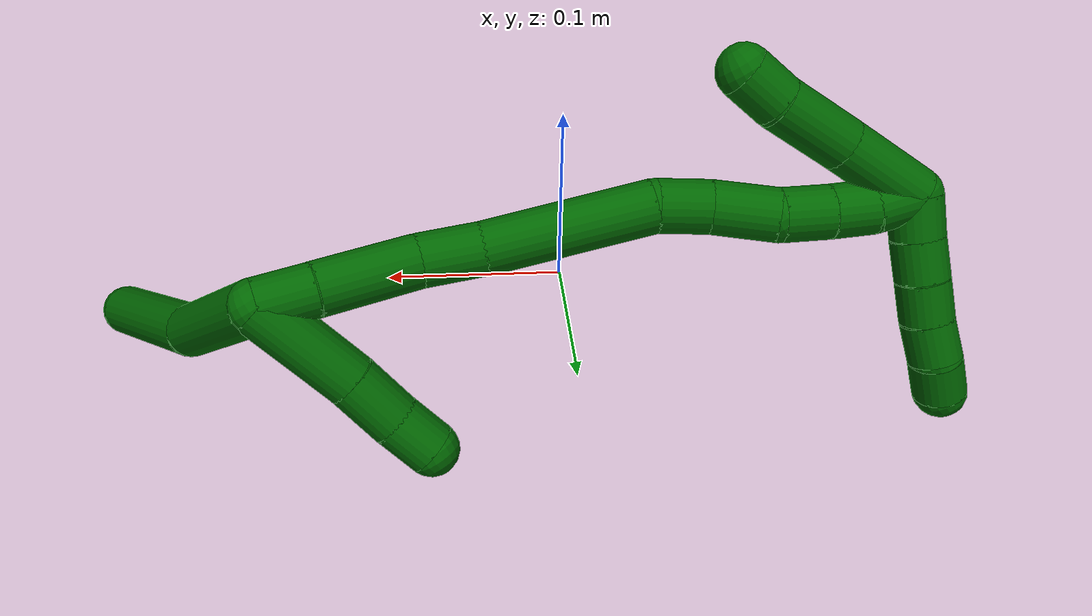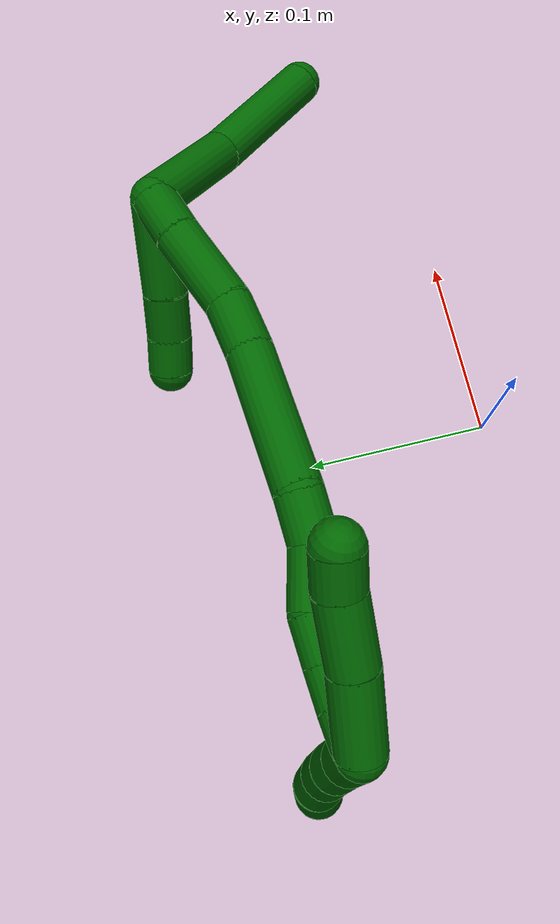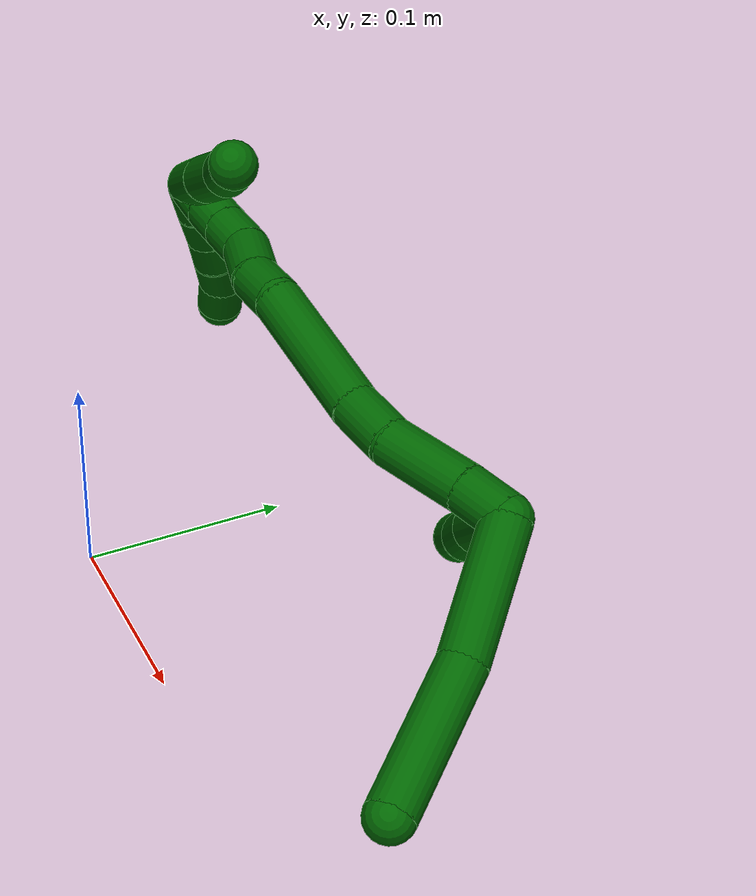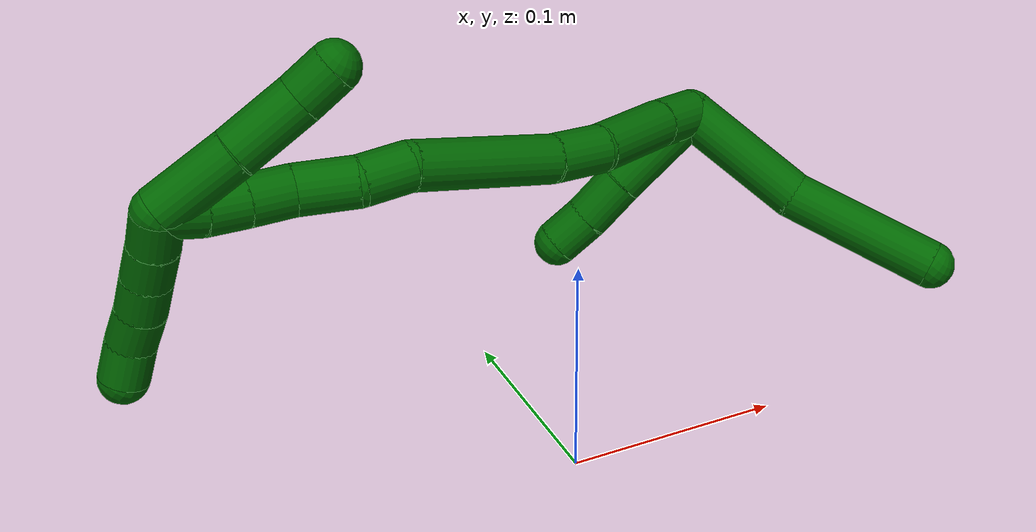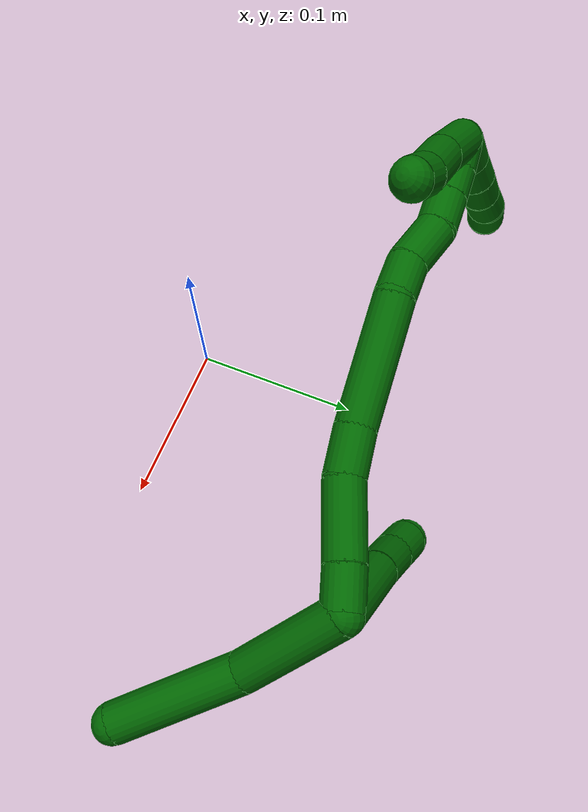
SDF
<sdf version="1.7">
 <world name="default">
  <model name="6">
   <static>0</static>
   <link name="6">
    <collision name="collision-cylinder-e_1_2_8">
     <pose>0.034779 0.00255 0.000922 -1.22394 1.493 -1.15173</pose>
     <geometry><cylinder><radius>0.0125</radius><length>0.069768</length></cylinder></geometry>
     <surface>
      <friction><ode><mu>1.16</mu><mu2>1.16</mu2><slip1>0</slip1><slip2>0</slip2></ode></friction>
      <contact><ode><kp>1e+06</kp><kd>1</kd><max_vel>0</max_vel><min_depth>0.001</min_depth></ode></contact>
     </surface>
    </collision>
    <visual name="visual-cylinder-e_1_2_8">
     <pose>0.034779 0.00255 0.000922 -1.22394 1.493 -1.15173</pose>
     <geometry><cylinder><radius>0.0125</radius><length>0.069768</length></cylinder></geometry>
     <material><ambient>0 0.392157 0.003922 1</ambient></material>
    </visual>
    <collision name="collision-cylinder-e_2_8_6">
     <pose>0.108002 0.003452 0.013184 0.144274 1.2811 0.107625</pose>
     <geometry><cylinder><radius>0.0125</radius><length>0.080232</length></cylinder></geometry>
     <surface>
      <friction><ode><mu>1.16</mu><mu2>1.16</mu2><slip1>0</slip1><slip2>0</slip2></ode></friction>
      <contact><ode><kp>1e+06</kp><kd>1</kd><max_vel>0</max_vel><min_depth>0.001</min_depth></ode></contact>
     </surface>
    </collision>
    <visual name="visual-cylinder-e_2_8_6">
     <pose>0.108002 0.003452 0.013184 0.144274 1.2811 0.107625</pose>
     <geometry><cylinder><radius>0.0125</radius><length>0.080232</length></cylinder></geometry>
     <material><ambient>0 0.392157 0.003922 1</ambient></material>
    </visual>
    <collision name="collision-cylinder-e_1_2_9">
     <pose>-0.001832 -0.007854 -0.024837 2.83534 -0.07022 -0.447549</pose>
     <geometry><cylinder><radius>0.0125</radius><length>0.052227</length></cylinder></geometry>
     <surface>
      <friction><ode><mu>1.16</mu><mu2>1.16</mu2><slip1>0</slip1><slip2>0</slip2></ode></friction>
      <contact><ode><kp>1e+06</kp><kd>1</kd><max_vel>0</max_vel><min_depth>0.001</min_depth></ode></contact>
     </surface>
    </collision>
    <visual name="visual-cylinder-e_1_2_9">
     <pose>-0.001832 -0.007854 -0.024837 2.83534 -0.07022 -0.447549</pose>
     <geometry><cylinder><radius>0.0125</radius><length>0.052227</length></cylinder></geometry>
     <material><ambient>0 0.392157 0.003922 1</ambient></material>
    </visual>
    <collision name="collision-cylinder-e_2_9_10">
     <pose>-0.004109 -0.018858 -0.0625 2.90073 -0.033623 -0.276103</pose>
     <geometry><cylinder><radius>0.0125</radius><length>0.02643</length></cylinder></geometry>
     <surface>
      <friction><ode><mu>1.16</mu><mu2>1.16</mu2><slip1>0</slip1><slip2>0</slip2></ode></friction>
      <contact><ode><kp>1e+06</kp><kd>1</kd><max_vel>0</max_vel><min_depth>0.001</min_depth></ode></contact>
     </surface>
    </collision>
    <visual name="visual-cylinder-e_2_9_10">
     <pose>-0.004109 -0.018858 -0.0625 2.90073 -0.033623 -0.276103</pose>
     <geometry><cylinder><radius>0.0125</radius><length>0.02643</length></cylinder></geometry>
     <material><ambient>0 0.392157 0.003922 1</ambient></material>
    </visual>
    <collision name="collision-cylinder-e_3_10_5">
     <pose>-0.005996 -0.02482 -0.085519 2.87241 -0.135634 -0.929848</pose>
     <geometry><cylinder><radius>0.0125</radius><length>0.021343</length></cylinder></geometry>
     <surface>
      <friction><ode><mu>1.16</mu><mu2>1.16</mu2><slip1>0</slip1><slip2>0</slip2></ode></friction>
      <contact><ode><kp>1e+06</kp><kd>1</kd><max_vel>0</max_vel><min_depth>0.001</min_depth></ode></contact>
     </surface>
    </collision>
    <visual name="visual-cylinder-e_3_10_5">
     <pose>-0.005996 -0.02482 -0.085519 2.87241 -0.135634 -0.929848</pose>
     <geometry><cylinder><radius>0.0125</radius><length>0.021343</length></cylinder></geometry>
     <material><ambient>0 0.392157 0.003922 1</ambient></material>
    </visual>
    <collision name="collision-cylinder-e_1_2_11">
     <pose>-0.004271 -0.011428 -0.004027 1.90958 -0.338885 -0.47426</pose>
     <geometry><cylinder><radius>0.0125</radius><length>0.025695</length></cylinder></geometry>
     <surface>
      <friction><ode><mu>1.16</mu><mu2>1.16</mu2><slip1>0</slip1><slip2>0</slip2></ode></friction>
      <contact><ode><kp>1e+06</kp><kd>1</kd><max_vel>0</max_vel><min_depth>0.001</min_depth></ode></contact>
     </surface>
    </collision>
    <visual name="visual-cylinder-e_1_2_11">
     <pose>-0.004271 -0.011428 -0.004027 1.90958 -0.338885 -0.47426</pose>
     <geometry><cylinder><radius>0.0125</radius><length>0.025695</length></cylinder></geometry>
     <material><ambient>0 0.392157 0.003922 1</ambient></material>
    </visual>
    <collision name="collision-cylinder-e_2_11_12">
     <pose>-0.01497 -0.044177 -0.015435 1.9041 -0.277554 -0.387417</pose>
     <geometry><cylinder><radius>0.0125</radius><length>0.04692</length></cylinder></geometry>
     <surface>
      <friction><ode><mu>1.16</mu><mu2>1.16</mu2><slip1>0</slip1><slip2>0</slip2></ode></friction>
      <contact><ode><kp>1e+06</kp><kd>1</kd><max_vel>0</max_vel><min_depth>0.001</min_depth></ode></contact>
     </surface>
    </collision>
    <visual name="visual-cylinder-e_2_11_12">
     <pose>-0.01497 -0.044177 -0.015435 1.9041 -0.277554 -0.387417</pose>
     <geometry><cylinder><radius>0.0125</radius><length>0.04692</length></cylinder></geometry>
     <material><ambient>0 0.392157 0.003922 1</ambient></material>
    </visual>
    <collision name="collision-cylinder-e_3_12_13">
     <pose>-0.028112 -0.077401 -0.028386 2.00838 -0.472315 -0.723258</pose>
     <geometry><cylinder><radius>0.0125</radius><length>0.029515</length></cylinder></geometry>
     <surface>
      <friction><ode><mu>1.16</mu><mu2>1.16</mu2><slip1>0</slip1><slip2>0</slip2></ode></friction>
      <contact><ode><kp>1e+06</kp><kd>1</kd><max_vel>0</max_vel><min_depth>0.001</min_depth></ode></contact>
     </surface>
    </collision>
    <visual name="visual-cylinder-e_3_12_13">
     <pose>-0.028112 -0.077401 -0.028386 2.00838 -0.472315 -0.723258</pose>
     <geometry><cylinder><radius>0.0125</radius><length>0.029515</length></cylinder></geometry>
     <material><ambient>0 0.392157 0.003922 1</ambient></material>
    </visual>
    <collision name="collision-cylinder-e_4_13_14">
     <pose>-0.057088 -0.119312 -0.046029 1.95335 -0.602784 -0.862558</pose>
     <geometry><cylinder><radius>0.0125</radius><length>0.078533</length></cylinder></geometry>
     <surface>
      <friction><ode><mu>1.16</mu><mu2>1.16</mu2><slip1>0</slip1><slip2>0</slip2></ode></friction>
      <contact><ode><kp>1e+06</kp><kd>1</kd><max_vel>0</max_vel><min_depth>0.001</min_depth></ode></contact>
     </surface>
    </collision>
    <visual name="visual-cylinder-e_4_13_14">
     <pose>-0.057088 -0.119312 -0.046029 1.95335 -0.602784 -0.862558</pose>
     <geometry><cylinder><radius>0.0125</radius><length>0.078533</length></cylinder></geometry>
     <material><ambient>0 0.392157 0.003922 1</ambient></material>
    </visual>
    <collision name="collision-cylinder-e_5_14_15">
     <pose>-0.085034 -0.158335 -0.065124 2.23242 -0.461668 -0.896491</pose>
     <geometry><cylinder><radius>0.0125</radius><length>0.025524</length></cylinder></geometry>
     <surface>
      <friction><ode><mu>1.16</mu><mu2>1.16</mu2><slip1>0</slip1><slip2>0</slip2></ode></friction>
      <contact><ode><kp>1e+06</kp><kd>1</kd><max_vel>0</max_vel><min_depth>0.001</min_depth></ode></contact>
     </surface>
    </collision>
    <visual name="visual-cylinder-e_5_14_15">
     <pose>-0.085034 -0.158335 -0.065124 2.23242 -0.461668 -0.896491</pose>
     <geometry><cylinder><radius>0.0125</radius><length>0.025524</length></cylinder></geometry>
     <material><ambient>0 0.392157 0.003922 1</ambient></material>
    </visual>
    <collision name="collision-cylinder-e_6_15_16">
     <pose>-0.10035 -0.174829 -0.081231 2.45291 -0.685879 -1.56638</pose>
     <geometry><cylinder><radius>0.0125</radius><length>0.030415</length></cylinder></geometry>
     <surface>
      <friction><ode><mu>1.16</mu><mu2>1.16</mu2><slip1>0</slip1><slip2>0</slip2></ode></friction>
      <contact><ode><kp>1e+06</kp><kd>1</kd><max_vel>0</max_vel><min_depth>0.001</min_depth></ode></contact>
     </surface>
    </collision>
    <visual name="visual-cylinder-e_6_15_16">
     <pose>-0.10035 -0.174829 -0.081231 2.45291 -0.685879 -1.56638</pose>
     <geometry><cylinder><radius>0.0125</radius><length>0.030415</length></cylinder></geometry>
     <material><ambient>0 0.392157 0.003922 1</ambient></material>
    </visual>
    <collision name="collision-cylinder-e_7_16_17">
     <pose>-0.115508 -0.190766 -0.095778 2.14419 -0.501964 -0.879979</pose>
     <geometry><cylinder><radius>0.0125</radius><length>0.022969</length></cylinder></geometry>
     <surface>
      <friction><ode><mu>1.16</mu><mu2>1.16</mu2><slip1>0</slip1><slip2>0</slip2></ode></friction>
      <contact><ode><kp>1e+06</kp><kd>1</kd><max_vel>0</max_vel><min_depth>0.001</min_depth></ode></contact>
     </surface>
    </collision>
    <visual name="visual-cylinder-e_7_16_17">
     <pose>-0.115508 -0.190766 -0.095778 2.14419 -0.501964 -0.879979</pose>
     <geometry><cylinder><radius>0.0125</radius><length>0.022969</length></cylinder></geometry>
     <material><ambient>0 0.392157 0.003922 1</ambient></material>
    </visual>
    <collision name="collision-cylinder-e_8_17_18">
     <pose>-0.125992 -0.206773 -0.105663 2.10076 -0.515621 -0.862406</pose>
     <geometry><cylinder><radius>0.0125</radius><length>0.020115</length></cylinder></geometry>
     <surface>
      <friction><ode><mu>1.16</mu><mu2>1.16</mu2><slip1>0</slip1><slip2>0</slip2></ode></friction>
      <contact><ode><kp>1e+06</kp><kd>1</kd><max_vel>0</max_vel><min_depth>0.001</min_depth></ode></contact>
     </surface>
    </collision>
    <visual name="visual-cylinder-e_8_17_18">
     <pose>-0.125992 -0.206773 -0.105663 2.10076 -0.515621 -0.862406</pose>
     <geometry><cylinder><radius>0.0125</radius><length>0.020115</length></cylinder></geometry>
     <material><ambient>0 0.392157 0.003922 1</ambient></material>
    </visual>
    <collision name="collision-cylinder-e_9_18_1">
     <pose>-0.136646 -0.222282 -0.112802 1.8996 -0.595188 -0.810013</pose>
     <geometry><cylinder><radius>0.0125</radius><length>0.020315</length></cylinder></geometry>
     <surface>
      <friction><ode><mu>1.16</mu><mu2>1.16</mu2><slip1>0</slip1><slip2>0</slip2></ode></friction>
      <contact><ode><kp>1e+06</kp><kd>1</kd><max_vel>0</max_vel><min_depth>0.001</min_depth></ode></contact>
     </surface>
    </collision>
    <visual name="visual-cylinder-e_9_18_1">
     <pose>-0.136646 -0.222282 -0.112802 1.8996 -0.595188 -0.810013</pose>
     <geometry><cylinder><radius>0.0125</radius><length>0.020315</length></cylinder></geometry>
     <material><ambient>0 0.392157 0.003922 1</ambient></material>
    </visual>
    <collision name="collision-cylinder-e_1_1_19">
     <pose>-0.139467 -0.227621 -0.12473 -2.86438 0.291492 -1.62167</pose>
     <geometry><cylinder><radius>0.0125</radius><length>0.02</length></cylinder></geometry>
     <surface>
      <friction><ode><mu>1.16</mu><mu2>1.16</mu2><slip1>0</slip1><slip2>0</slip2></ode></friction>
      <contact><ode><kp>1e+06</kp><kd>1</kd><max_vel>0</max_vel><min_depth>0.001</min_depth></ode></contact>
     </surface>
    </collision>
    <visual name="visual-cylinder-e_1_1_19">
     <pose>-0.139467 -0.227621 -0.12473 -2.86438 0.291492 -1.62167</pose>
     <geometry><cylinder><radius>0.0125</radius><length>0.02</length></cylinder></geometry>
     <material><ambient>0 0.392157 0.003922 1</ambient></material>
    </visual>
    <collision name="collision-cylinder-e_2_19_20">
     <pose>-0.134182 -0.222556 -0.143335 -2.88699 0.243589 -1.52614</pose>
     <geometry><cylinder><radius>0.0125</radius><length>0.02</length></cylinder></geometry>
     <surface>
      <friction><ode><mu>1.16</mu><mu2>1.16</mu2><slip1>0</slip1><slip2>0</slip2></ode></friction>
      <contact><ode><kp>1e+06</kp><kd>1</kd><max_vel>0</max_vel><min_depth>0.001</min_depth></ode></contact>
     </surface>
    </collision>
    <visual name="visual-cylinder-e_2_19_20">
     <pose>-0.134182 -0.222556 -0.143335 -2.88699 0.243589 -1.52614</pose>
     <geometry><cylinder><radius>0.0125</radius><length>0.02</length></cylinder></geometry>
     <material><ambient>0 0.392157 0.003922 1</ambient></material>
    </visual>
    <collision name="collision-cylinder-e_3_20_21">
     <pose>-0.12902 -0.218101 -0.162129 -2.93093 0.278611 -1.84948</pose>
     <geometry><cylinder><radius>0.0125</radius><length>0.02</length></cylinder></geometry>
     <surface>
      <friction><ode><mu>1.16</mu><mu2>1.16</mu2><slip1>0</slip1><slip2>0</slip2></ode></friction>
      <contact><ode><kp>1e+06</kp><kd>1</kd><max_vel>0</max_vel><min_depth>0.001</min_depth></ode></contact>
     </surface>
    </collision>
    <visual name="visual-cylinder-e_3_20_21">
     <pose>-0.12902 -0.218101 -0.162129 -2.93093 0.278611 -1.84948</pose>
     <geometry><cylinder><radius>0.0125</radius><length>0.02</length></cylinder></geometry>
     <material><ambient>0 0.392157 0.003922 1</ambient></material>
    </visual>
    <collision name="collision-cylinder-e_4_21_22">
     <pose>-0.124119 -0.214646 -0.181189 -2.99308 0.216691 -1.94185</pose>
     <geometry><cylinder><radius>0.0125</radius><length>0.02</length></cylinder></geometry>
     <surface>
      <friction><ode><mu>1.16</mu><mu2>1.16</mu2><slip1>0</slip1><slip2>0</slip2></ode></friction>
      <contact><ode><kp>1e+06</kp><kd>1</kd><max_vel>0</max_vel><min_depth>0.001</min_depth></ode></contact>
     </surface>
    </collision>
    <visual name="visual-cylinder-e_4_21_22">
     <pose>-0.124119 -0.214646 -0.181189 -2.99308 0.216691 -1.94185</pose>
     <geometry><cylinder><radius>0.0125</radius><length>0.02</length></cylinder></geometry>
     <material><ambient>0 0.392157 0.003922 1</ambient></material>
    </visual>
    <collision name="collision-cylinder-e_5_22_4">
     <pose>-0.118272 -0.213347 -0.200138 3.12589 0.37869 3.05968</pose>
     <geometry><cylinder><radius>0.0125</radius><length>0.02</length></cylinder></geometry>
     <surface>
      <friction><ode><mu>1.16</mu><mu2>1.16</mu2><slip1>0</slip1><slip2>0</slip2></ode></friction>
      <contact><ode><kp>1e+06</kp><kd>1</kd><max_vel>0</max_vel><min_depth>0.001</min_depth></ode></contact>
     </surface>
    </collision>
    <visual name="visual-cylinder-e_5_22_4">
     <pose>-0.118272 -0.213347 -0.200138 3.12589 0.37869 3.05968</pose>
     <geometry><cylinder><radius>0.0125</radius><length>0.02</length></cylinder></geometry>
     <material><ambient>0 0.392157 0.003922 1</ambient></material>
    </visual>
    <collision name="collision-cylinder-e_1_1_23">
     <pose>-0.138337 -0.221636 -0.096595 -0.426868 0.190261 -0.041355</pose>
     <geometry><cylinder><radius>0.0125</radius><length>0.042342</length></cylinder></geometry>
     <surface>
      <friction><ode><mu>1.16</mu><mu2>1.16</mu2><slip1>0</slip1><slip2>0</slip2></ode></friction>
      <contact><ode><kp>1e+06</kp><kd>1</kd><max_vel>0</max_vel><min_depth>0.001</min_depth></ode></contact>
     </surface>
    </collision>
    <visual name="visual-cylinder-e_1_1_23">
     <pose>-0.138337 -0.221636 -0.096595 -0.426868 0.190261 -0.041355</pose>
     <geometry><cylinder><radius>0.0125</radius><length>0.042342</length></cylinder></geometry>
     <material><ambient>0 0.392157 0.003922 1</ambient></material>
    </visual>
    <collision name="collision-cylinder-e_2_23_24">
     <pose>-0.131707 -0.204418 -0.061578 -0.491281 0.142958 -0.035897</pose>
     <geometry><cylinder><radius>0.0125</radius><length>0.03688</length></cylinder></geometry>
     <surface>
      <friction><ode><mu>1.16</mu><mu2>1.16</mu2><slip1>0</slip1><slip2>0</slip2></ode></friction>
      <contact><ode><kp>1e+06</kp><kd>1</kd><max_vel>0</max_vel><min_depth>0.001</min_depth></ode></contact>
     </surface>
    </collision>
    <visual name="visual-cylinder-e_2_23_24">
     <pose>-0.131707 -0.204418 -0.061578 -0.491281 0.142958 -0.035897</pose>
     <geometry><cylinder><radius>0.0125</radius><length>0.03688</length></cylinder></geometry>
     <material><ambient>0 0.392157 0.003922 1</ambient></material>
    </visual>
    <collision name="collision-cylinder-e_3_24_3">
     <pose>-0.127797 -0.192465 -0.035732 -0.33022 0.123728 -0.020642</pose>
     <geometry><cylinder><radius>0.0125</radius><length>0.020778</length></cylinder></geometry>
     <surface>
      <friction><ode><mu>1.16</mu><mu2>1.16</mu2><slip1>0</slip1><slip2>0</slip2></ode></friction>
      <contact><ode><kp>1e+06</kp><kd>1</kd><max_vel>0</max_vel><min_depth>0.001</min_depth></ode></contact>
     </surface>
    </collision>
    <visual name="visual-cylinder-e_3_24_3">
     <pose>-0.127797 -0.192465 -0.035732 -0.33022 0.123728 -0.020642</pose>
     <geometry><cylinder><radius>0.0125</radius><length>0.020778</length></cylinder></geometry>
     <material><ambient>0 0.392157 0.003922 1</ambient></material>
    </visual>
    <collision name="collision-sphere-3">
     <pose>-0.126515 -0.189122 -0.025979 0 -0 0</pose>
     <geometry><sphere><radius>0.0125</radius></sphere></geometry>
     <surface>
      <friction><ode><mu>1.16</mu><mu2>1.16</mu2><slip1>0</slip1><slip2>0</slip2></ode></friction>
      <contact><ode><kp>1e+06</kp><kd>1</kd><max_vel>0</max_vel><min_depth>0.001</min_depth></ode></contact>
     </surface>
    </collision>
    <visual name="visual-sphere-3">
     <pose>-0.126515 -0.189122 -0.025979 0 -0 0</pose>
     <geometry><sphere><radius>0.0125</radius></sphere></geometry>
     <material><ambient>0 0.392157 0.003922 1</ambient></material>
    </visual>
    <collision name="collision-sphere-24">
     <pose>-0.129079 -0.195808 -0.045484 0 -0 0</pose>
     <geometry><sphere><radius>0.0125</radius></sphere></geometry>
     <surface>
      <friction><ode><mu>1.16</mu><mu2>1.16</mu2><slip1>0</slip1><slip2>0</slip2></ode></friction>
      <contact><ode><kp>1e+06</kp><kd>1</kd><max_vel>0</max_vel><min_depth>0.001</min_depth></ode></contact>
     </surface>
    </collision>
    <visual name="visual-sphere-24">
     <pose>-0.129079 -0.195808 -0.045484 0 -0 0</pose>
     <geometry><sphere><radius>0.0125</radius></sphere></geometry>
     <material><ambient>0 0.392157 0.003922 1</ambient></material>
    </visual>
    <collision name="collision-sphere-23">
     <pose>-0.134334 -0.213029 -0.077671 0 -0 0</pose>
     <geometry><sphere><radius>0.0125</radius></sphere></geometry>
     <surface>
      <friction><ode><mu>1.16</mu><mu2>1.16</mu2><slip1>0</slip1><slip2>0</slip2></ode></friction>
      <contact><ode><kp>1e+06</kp><kd>1</kd><max_vel>0</max_vel><min_depth>0.001</min_depth></ode></contact>
     </surface>
    </collision>
    <visual name="visual-sphere-23">
     <pose>-0.134334 -0.213029 -0.077671 0 -0 0</pose>
     <geometry><sphere><radius>0.0125</radius></sphere></geometry>
     <material><ambient>0 0.392157 0.003922 1</ambient></material>
    </visual>
    <collision name="collision-sphere-4">
     <pose>-0.114575 -0.213492 -0.209428 0 -0 0</pose>
     <geometry><sphere><radius>0.0125</radius></sphere></geometry>
     <surface>
      <friction><ode><mu>1.16</mu><mu2>1.16</mu2><slip1>0</slip1><slip2>0</slip2></ode></friction>
      <contact><ode><kp>1e+06</kp><kd>1</kd><max_vel>0</max_vel><min_depth>0.001</min_depth></ode></contact>
     </surface>
    </collision>
    <visual name="visual-sphere-4">
     <pose>-0.114575 -0.213492 -0.209428 0 -0 0</pose>
     <geometry><sphere><radius>0.0125</radius></sphere></geometry>
     <material><ambient>0 0.392157 0.003922 1</ambient></material>
    </visual>
    <collision name="collision-sphere-22">
     <pose>-0.121969 -0.213201 -0.190848 0 -0 0</pose>
     <geometry><sphere><radius>0.0125</radius></sphere></geometry>
     <surface>
      <friction><ode><mu>1.16</mu><mu2>1.16</mu2><slip1>0</slip1><slip2>0</slip2></ode></friction>
      <contact><ode><kp>1e+06</kp><kd>1</kd><max_vel>0</max_vel><min_depth>0.001</min_depth></ode></contact>
     </surface>
    </collision>
    <visual name="visual-sphere-22">
     <pose>-0.121969 -0.213201 -0.190848 0 -0 0</pose>
     <geometry><sphere><radius>0.0125</radius></sphere></geometry>
     <material><ambient>0 0.392157 0.003922 1</ambient></material>
    </visual>
    <collision name="collision-sphere-21">
     <pose>-0.126269 -0.216091 -0.17153 0 -0 0</pose>
     <geometry><sphere><radius>0.0125</radius></sphere></geometry>
     <surface>
      <friction><ode><mu>1.16</mu><mu2>1.16</mu2><slip1>0</slip1><slip2>0</slip2></ode></friction>
      <contact><ode><kp>1e+06</kp><kd>1</kd><max_vel>0</max_vel><min_depth>0.001</min_depth></ode></contact>
     </surface>
    </collision>
    <visual name="visual-sphere-21">
     <pose>-0.126269 -0.216091 -0.17153 0 -0 0</pose>
     <geometry><sphere><radius>0.0125</radius></sphere></geometry>
     <material><ambient>0 0.392157 0.003922 1</ambient></material>
    </visual>
    <collision name="collision-sphere-20">
     <pose>-0.13177 -0.220112 -0.152727 0 -0 0</pose>
     <geometry><sphere><radius>0.0125</radius></sphere></geometry>
     <surface>
      <friction><ode><mu>1.16</mu><mu2>1.16</mu2><slip1>0</slip1><slip2>0</slip2></ode></friction>
      <contact><ode><kp>1e+06</kp><kd>1</kd><max_vel>0</max_vel><min_depth>0.001</min_depth></ode></contact>
     </surface>
    </collision>
    <visual name="visual-sphere-20">
     <pose>-0.13177 -0.220112 -0.152727 0 -0 0</pose>
     <geometry><sphere><radius>0.0125</radius></sphere></geometry>
     <material><ambient>0 0.392157 0.003922 1</ambient></material>
    </visual>
    <collision name="collision-sphere-5">
     <pose>-0.007439 -0.027632 -0.095712 0 -0 0</pose>
     <geometry><sphere><radius>0.0125</radius></sphere></geometry>
     <surface>
      <friction><ode><mu>1.16</mu><mu2>1.16</mu2><slip1>0</slip1><slip2>0</slip2></ode></friction>
      <contact><ode><kp>1e+06</kp><kd>1</kd><max_vel>0</max_vel><min_depth>0.001</min_depth></ode></contact>
     </surface>
    </collision>
    <visual name="visual-sphere-5">
     <pose>-0.007439 -0.027632 -0.095712 0 -0 0</pose>
     <geometry><sphere><radius>0.0125</radius></sphere></geometry>
     <material><ambient>0 0.392157 0.003922 1</ambient></material>
    </visual>
    <collision name="collision-sphere-10">
     <pose>-0.004553 -0.022008 -0.075327 0 -0 0</pose>
     <geometry><sphere><radius>0.0125</radius></sphere></geometry>
     <surface>
      <friction><ode><mu>1.16</mu><mu2>1.16</mu2><slip1>0</slip1><slip2>0</slip2></ode></friction>
      <contact><ode><kp>1e+06</kp><kd>1</kd><max_vel>0</max_vel><min_depth>0.001</min_depth></ode></contact>
     </surface>
    </collision>
    <visual name="visual-sphere-10">
     <pose>-0.004553 -0.022008 -0.075327 0 -0 0</pose>
     <geometry><sphere><radius>0.0125</radius></sphere></geometry>
     <material><ambient>0 0.392157 0.003922 1</ambient></material>
    </visual>
    <collision name="collision-sphere-6">
     <pose>0.146446 0.001804 0.024524 0 -0 0</pose>
     <geometry><sphere><radius>0.0125</radius></sphere></geometry>
     <surface>
      <friction><ode><mu>1.16</mu><mu2>1.16</mu2><slip1>0</slip1><slip2>0</slip2></ode></friction>
      <contact><ode><kp>1e+06</kp><kd>1</kd><max_vel>0</max_vel><min_depth>0.001</min_depth></ode></contact>
     </surface>
    </collision>
    <visual name="visual-sphere-6">
     <pose>0.146446 0.001804 0.024524 0 -0 0</pose>
     <geometry><sphere><radius>0.0125</radius></sphere></geometry>
     <material><ambient>0 0.392157 0.003922 1</ambient></material>
    </visual>
    <collision name="collision-sphere-9">
     <pose>-0.003664 -0.015707 -0.049674 0 -0 0</pose>
     <geometry><sphere><radius>0.0125</radius></sphere></geometry>
     <surface>
      <friction><ode><mu>1.16</mu><mu2>1.16</mu2><slip1>0</slip1><slip2>0</slip2></ode></friction>
      <contact><ode><kp>1e+06</kp><kd>1</kd><max_vel>0</max_vel><min_depth>0.001</min_depth></ode></contact>
     </surface>
    </collision>
    <visual name="visual-sphere-9">
     <pose>-0.003664 -0.015707 -0.049674 0 -0 0</pose>
     <geometry><sphere><radius>0.0125</radius></sphere></geometry>
     <material><ambient>0 0.392157 0.003922 1</ambient></material>
    </visual>
    <collision name="collision-sphere-2">
     <geometry><sphere><radius>0.0125</radius></sphere></geometry>
     <surface>
      <friction><ode><mu>1.16</mu><mu2>1.16</mu2><slip1>0</slip1><slip2>0</slip2></ode></friction>
      <contact><ode><kp>1e+06</kp><kd>1</kd><max_vel>0</max_vel><min_depth>0.001</min_depth></ode></contact>
     </surface>
    </collision>
    <visual name="visual-sphere-2">
     <geometry><sphere><radius>0.0125</radius></sphere></geometry>
     <material><ambient>0 0.392157 0.003922 1</ambient></material>
    </visual>
    <collision name="collision-sphere-19">
     <pose>-0.136594 -0.225 -0.133943 0 -0 0</pose>
     <geometry><sphere><radius>0.0125</radius></sphere></geometry>
     <surface>
      <friction><ode><mu>1.16</mu><mu2>1.16</mu2><slip1>0</slip1><slip2>0</slip2></ode></friction>
      <contact><ode><kp>1e+06</kp><kd>1</kd><max_vel>0</max_vel><min_depth>0.001</min_depth></ode></contact>
     </surface>
    </collision>
    <visual name="visual-sphere-19">
     <pose>-0.136594 -0.225 -0.133943 0 -0 0</pose>
     <geometry><sphere><radius>0.0125</radius></sphere></geometry>
     <material><ambient>0 0.392157 0.003922 1</ambient></material>
    </visual>
    <collision name="collision-sphere-8">
     <pose>0.069557 0.005099 0.001843 0 -0 0</pose>
     <geometry><sphere><radius>0.0125</radius></sphere></geometry>
     <surface>
      <friction><ode><mu>1.16</mu><mu2>1.16</mu2><slip1>0</slip1><slip2>0</slip2></ode></friction>
      <contact><ode><kp>1e+06</kp><kd>1</kd><max_vel>0</max_vel><min_depth>0.001</min_depth></ode></contact>
     </surface>
    </collision>
    <visual name="visual-sphere-8">
     <pose>0.069557 0.005099 0.001843 0 -0 0</pose>
     <geometry><sphere><radius>0.0125</radius></sphere></geometry>
     <material><ambient>0 0.392157 0.003922 1</ambient></material>
    </visual>
    <collision name="collision-sphere-11">
     <pose>-0.008542 -0.022856 -0.008054 0 -0 0</pose>
     <geometry><sphere><radius>0.0125</radius></sphere></geometry>
     <surface>
      <friction><ode><mu>1.16</mu><mu2>1.16</mu2><slip1>0</slip1><slip2>0</slip2></ode></friction>
      <contact><ode><kp>1e+06</kp><kd>1</kd><max_vel>0</max_vel><min_depth>0.001</min_depth></ode></contact>
     </surface>
    </collision>
    <visual name="visual-sphere-11">
     <pose>-0.008542 -0.022856 -0.008054 0 -0 0</pose>
     <geometry><sphere><radius>0.0125</radius></sphere></geometry>
     <material><ambient>0 0.392157 0.003922 1</ambient></material>
    </visual>
    <collision name="collision-sphere-12">
     <pose>-0.021398 -0.065497 -0.022817 0 -0 0</pose>
     <geometry><sphere><radius>0.0125</radius></sphere></geometry>
     <surface>
      <friction><ode><mu>1.16</mu><mu2>1.16</mu2><slip1>0</slip1><slip2>0</slip2></ode></friction>
      <contact><ode><kp>1e+06</kp><kd>1</kd><max_vel>0</max_vel><min_depth>0.001</min_depth></ode></contact>
     </surface>
    </collision>
    <visual name="visual-sphere-12">
     <pose>-0.021398 -0.065497 -0.022817 0 -0 0</pose>
     <geometry><sphere><radius>0.0125</radius></sphere></geometry>
     <material><ambient>0 0.392157 0.003922 1</ambient></material>
    </visual>
    <collision name="collision-sphere-13">
     <pose>-0.034826 -0.089304 -0.033955 0 -0 0</pose>
     <geometry><sphere><radius>0.0125</radius></sphere></geometry>
     <surface>
      <friction><ode><mu>1.16</mu><mu2>1.16</mu2><slip1>0</slip1><slip2>0</slip2></ode></friction>
      <contact><ode><kp>1e+06</kp><kd>1</kd><max_vel>0</max_vel><min_depth>0.001</min_depth></ode></contact>
     </surface>
    </collision>
    <visual name="visual-sphere-13">
     <pose>-0.034826 -0.089304 -0.033955 0 -0 0</pose>
     <geometry><sphere><radius>0.0125</radius></sphere></geometry>
     <material><ambient>0 0.392157 0.003922 1</ambient></material>
    </visual>
    <collision name="collision-sphere-14">
     <pose>-0.079349 -0.14932 -0.058104 0 -0 0</pose>
     <geometry><sphere><radius>0.0125</radius></sphere></geometry>
     <surface>
      <friction><ode><mu>1.16</mu><mu2>1.16</mu2><slip1>0</slip1><slip2>0</slip2></ode></friction>
      <contact><ode><kp>1e+06</kp><kd>1</kd><max_vel>0</max_vel><min_depth>0.001</min_depth></ode></contact>
     </surface>
    </collision>
    <visual name="visual-sphere-14">
     <pose>-0.079349 -0.14932 -0.058104 0 -0 0</pose>
     <geometry><sphere><radius>0.0125</radius></sphere></geometry>
     <material><ambient>0 0.392157 0.003922 1</ambient></material>
    </visual>
    <collision name="collision-sphere-15">
     <pose>-0.090719 -0.16735 -0.072144 0 -0 0</pose>
     <geometry><sphere><radius>0.0125</radius></sphere></geometry>
     <surface>
      <friction><ode><mu>1.16</mu><mu2>1.16</mu2><slip1>0</slip1><slip2>0</slip2></ode></friction>
      <contact><ode><kp>1e+06</kp><kd>1</kd><max_vel>0</max_vel><min_depth>0.001</min_depth></ode></contact>
     </surface>
    </collision>
    <visual name="visual-sphere-15">
     <pose>-0.090719 -0.16735 -0.072144 0 -0 0</pose>
     <geometry><sphere><radius>0.0125</radius></sphere></geometry>
     <material><ambient>0 0.392157 0.003922 1</ambient></material>
    </visual>
    <collision name="collision-sphere-16">
     <pose>-0.109982 -0.182308 -0.090317 0 -0 0</pose>
     <geometry><sphere><radius>0.0125</radius></sphere></geometry>
     <surface>
      <friction><ode><mu>1.16</mu><mu2>1.16</mu2><slip1>0</slip1><slip2>0</slip2></ode></friction>
      <contact><ode><kp>1e+06</kp><kd>1</kd><max_vel>0</max_vel><min_depth>0.001</min_depth></ode></contact>
     </surface>
    </collision>
    <visual name="visual-sphere-16">
     <pose>-0.109982 -0.182308 -0.090317 0 -0 0</pose>
     <geometry><sphere><radius>0.0125</radius></sphere></geometry>
     <material><ambient>0 0.392157 0.003922 1</ambient></material>
    </visual>
    <collision name="collision-sphere-17">
     <pose>-0.121033 -0.199223 -0.10124 0 -0 0</pose>
     <geometry><sphere><radius>0.0125</radius></sphere></geometry>
     <surface>
      <friction><ode><mu>1.16</mu><mu2>1.16</mu2><slip1>0</slip1><slip2>0</slip2></ode></friction>
      <contact><ode><kp>1e+06</kp><kd>1</kd><max_vel>0</max_vel><min_depth>0.001</min_depth></ode></contact>
     </surface>
    </collision>
    <visual name="visual-sphere-17">
     <pose>-0.121033 -0.199223 -0.10124 0 -0 0</pose>
     <geometry><sphere><radius>0.0125</radius></sphere></geometry>
     <material><ambient>0 0.392157 0.003922 1</ambient></material>
    </visual>
    <collision name="collision-sphere-18">
     <pose>-0.130951 -0.214322 -0.110086 0 -0 0</pose>
     <geometry><sphere><radius>0.0125</radius></sphere></geometry>
     <surface>
      <friction><ode><mu>1.16</mu><mu2>1.16</mu2><slip1>0</slip1><slip2>0</slip2></ode></friction>
      <contact><ode><kp>1e+06</kp><kd>1</kd><max_vel>0</max_vel><min_depth>0.001</min_depth></ode></contact>
     </surface>
    </collision>
    <visual name="visual-sphere-18">
     <pose>-0.130951 -0.214322 -0.110086 0 -0 0</pose>
     <geometry><sphere><radius>0.0125</radius></sphere></geometry>
     <material><ambient>0 0.392157 0.003922 1</ambient></material>
    </visual>
    <collision name="collision-sphere-1">
     <pose>-0.142341 -0.230243 -0.115518 0 -0 0</pose>
     <geometry><sphere><radius>0.0125</radius></sphere></geometry>
     <surface>
      <friction><ode><mu>1.16</mu><mu2>1.16</mu2><slip1>0</slip1><slip2>0</slip2></ode></friction>
      <contact><ode><kp>1e+06</kp><kd>1</kd><max_vel>0</max_vel><min_depth>0.001</min_depth></ode></contact>
     </surface>
    </collision>
    <visual name="visual-sphere-1">
     <pose>-0.142341 -0.230243 -0.115518 0 -0 0</pose>
     <geometry><sphere><radius>0.0125</radius></sphere></geometry>
     <material><ambient>0 0.392157 0.003922 1</ambient></material>
    </visual>
    <inertial>
     <pose>-0.046431 -0.107023 -0.057355 0 -0 0</pose>
     <mass>0.75</mass>
     <inertia><ixx>3.1e-05</ixx><ixy>0</ixy><ixz>0</ixz><iyy>1.2e-05</iyy><iyz>0</iyz><izz>-6e-06</izz></inertia>
    </inertial>
   </link>
   <pose>0.143706 0.151591 0.079857 -0.204482 0.603585 -0.889408</pose>
  </model>
 </world>
</sdf>
